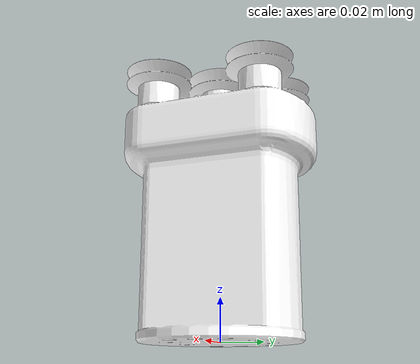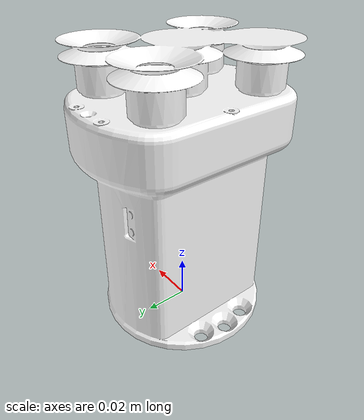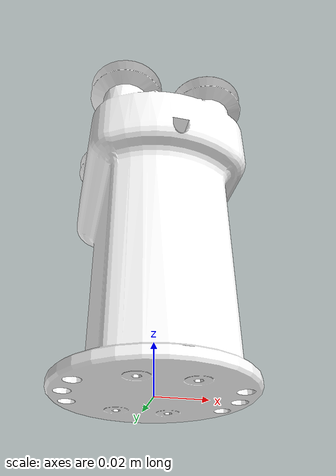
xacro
<?xml version='1.0' encoding='utf-8'?>
<robot xmlns:xacro="http://ros.org/wiki/xacro" name="UF_VACUUM_GRIPPER">
  <xacro:arg name="robot_type" default="xarm"/>
  <xacro:arg name="prefix" default=""/>
  <xacro:arg name="mesh_suffix" default="stl"/>

  <xacro:include filename="$(find xarm_description)/urdf/vacuum_gripper/vacuum_gripper_macro.xacro" />

  <xacro:vacuum_gripper_device robot_type="$(arg robot_type)" prefix="$(arg prefix)" mesh_suffix="$(arg mesh_suffix)" />

</robot>

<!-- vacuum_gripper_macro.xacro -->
<robot xmlns:xacro="http://ros.org/wiki/xacro" name="UF_VACUUM_GRIPPER">
  <xacro:macro name="vacuum_gripper_device" params="prefix:='' robot_type:='xarm' mesh_suffix:='stl' ">

    <!-- Load Common Material -->
    <xacro:include filename="$(find xarm_description)/urdf/_private_macro.xacro" />
    <xacro:device_macro_begin />

    <!-- Load Common Material -->
    <xacro:include filename="$(find xarm_description)/urdf/common/common.material.xacro" />
    <xacro:common_material prefix="${prefix}"/>

    <xacro:property name="mesh_path" value="package://xarm_description/meshes" scope="parent"/>

    <!-- include common.link.xacro -->
    <xacro:include filename="$(find xarm_description)/urdf/common/common.link.xacro" />

    <xacro:if value="${robot_type == 'lite'}">
      <!-- Load Lite Gripper Model URDF -->
      <xacro:include filename="$(find xarm_description)/urdf/vacuum_gripper/lite_vacuum_gripper.urdf.xacro" />
      <xacro:uflite_vacuum_gripper_urdf prefix="${prefix}" />
    </xacro:if>
    <xacro:unless value="${robot_type == 'lite'}">
      <!-- Load XArm Gripper Model URDF -->
      <xacro:include filename="$(find xarm_description)/urdf/vacuum_gripper/xarm_vacuum_gripper.urdf.xacro" />
      <xacro:xarm_vacuum_gripper_urdf prefix="${prefix}" />
    </xacro:unless>
  </xacro:macro>
</robot>

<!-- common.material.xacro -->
<robot xmlns:xacro="http://ros.org/wiki/xacro">
  <xacro:macro name="common_material" params="prefix">
    <material name="${prefix}Black">
      <color rgba="0.0 0.0 0.0 1.0"/>
    </material>

    <material name="${prefix}Red">
      <color rgba="0.8 0.0 0.0 1.0"/>
    </material>

    <material name="${prefix}White">
      <color rgba="1.0 1.0 1.0 1.0"/>
    </material>

    <material name="${prefix}Silver">
      <color rgba="0.753 0.753 0.753 1.0"/>
    </material>
  </xacro:macro>
</robot>

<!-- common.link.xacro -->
<robot xmlns:xacro="http://ros.org/wiki/xacro">

  <xacro:macro name="common_link_inertial" params="link_inertial_params origin_rpy:='0 0 0'">
    <inertial>
      <origin
        xyz="${link_inertial_params['origin']['x']} ${link_inertial_params['origin']['y']} ${link_inertial_params['origin']['z']}"
        rpy="${origin_rpy}" />
      <mass value="${link_inertial_params['mass']}" />
      <inertia
        ixx="${link_inertial_params['inertia']['ixx']}"
        ixy="${link_inertial_params['inertia']['ixy']}"
        ixz="${link_inertial_params['inertia']['ixz']}"
        iyy="${link_inertial_params['inertia']['iyy']}"
        iyz="${link_inertial_params['inertia']['iyz']}"
        izz="${link_inertial_params['inertia']['izz']}" />
    </inertial>
  </xacro:macro>

  <xacro:macro name="common_link_mesh" params="mesh_filename use_mesh_path:=true">
    <xacro:if value="${use_mesh_path}">
      <mesh filename="${mesh_path}/${mesh_filename}"/>
    </xacro:if>
    <xacro:unless value="${use_mesh_path}">
      <mesh filename="${mesh_filename}"/>
    </xacro:unless>
  </xacro:macro>

  <xacro:macro name="common_link_visual" params="mesh_filename add_mesh_suffix:=true material_name:='White' origin_xyz:='0 0 0' origin_rpy:='0 0 0'">
    <visual>
      <geometry>
        <xacro:if value="${add_mesh_suffix}">
          <mesh filename="${mesh_path}/${mesh_filename}.${mesh_suffix}"/>
        </xacro:if>
        <xacro:unless value="${add_mesh_suffix}">
          <mesh filename="${mesh_path}/${mesh_filename}"/>
        </xacro:unless>
      </geometry>
      <origin xyz="${origin_xyz}" rpy="${origin_rpy}"/>
      <material name="${material_name}" />
    </visual>
  </xacro:macro>

  <xacro:macro name="common_link_collision" params="mesh_filename add_mesh_suffix:=true origin_xyz:='0 0 0' origin_rpy:='0 0 0'">
    <collision>
      <geometry>
        <xacro:if value="${add_mesh_suffix}">
          <mesh filename="${mesh_path}/${mesh_filename}.${mesh_suffix}"/>
        </xacro:if>
        <xacro:unless value="${add_mesh_suffix}">
          <mesh filename="${mesh_path}/${mesh_filename}"/>
        </xacro:unless>
      </geometry>
      <origin xyz="${origin_xyz}" rpy="${origin_rpy}"/>
    </collision>
  </xacro:macro>

  <xacro:macro name="parse_link_inertial_filename" params="dof robot_type robot_sn model1300">
    <!-- default inertial params filename -->
    <xacro:property name="inertial_params_filename" value="xarm${dof}_type${dof}_HT_BR2"/>
    <xacro:if value="${dof == 6 and robot_type == 'lite'}">
      <xacro:property name="inertial_params_filename" value="xarm6_type9_HT_BR2"/>
    </xacro:if>
    <xacro:if value="${dof == 6 and robot_type == 'uf850'}">
      <xacro:property name="inertial_params_filename" value="xarm6_type12_HT_LDBR2"/>
    </xacro:if>

    <xacro:if value="${use_len}">
      <xacro:property name="robot_sn_len" value="${len(robot_sn)}" />
    </xacro:if>
    <xacro:unless value="${use_len}">
      <xacro:property name="robot_sn_len" value="${robot_sn.__len__()}" />
    </xacro:unless>

    <!-- default model_type and mass_type -->
    <xacro:property name="mass_type" value="-1" />
    <xacro:property name="model_type" value="-1" />
    <xacro:property name="_model1300" value="${model1300}" />

    <!-- parse model_type and mass_type from robot_sn -->
    <xacro:if value="${robot_sn_len >= 14 and (robot_sn[0] == 'X' or robot_sn[0] == 'L' or robot_sn[0] == 'F')}">
      <xacro:if value="${robot_sn[0] == 'F' and robot_sn[1] == 'X'}">
        <!-- UF850 -->
        <xacro:property name="model_type" value="12" />
      </xacro:if>
      <xacro:if value="${robot_sn[0] == 'L'}">
        <!-- Lite6 -->
        <xacro:property name="model_type" value="9" />
      </xacro:if>
      <xacro:if value="${robot_sn[0] == 'X'}">
        <xacro:property name="model_type" value="-1" />
        <!-- XARM -->
        <xacro:if value="${robot_sn[1] == 'F'}">
          <!-- XARM5 -->
          <xacro:property name="model_type" value="5" />
        </xacro:if>
        <xacro:if value="${robot_sn[1] == 'I'}">
          <!-- XARM6 -->
          <xacro:property name="model_type" value="6" />
        </xacro:if>
        <xacro:if value="${robot_sn[1] == 'S'}">
          <!-- XARM7 -->
          <xacro:property name="model_type" value="7" />
        </xacro:if>
      </xacro:if>

      <xacro:property name="model_num" value="${int(robot_sn[2:6])}" />
      <xacro:if value="${model_num == 1250}">
        <xacro:property name="model_type" value="8" />
        <xacro:property name="mass_type" value="1" />
      </xacro:if>
      <xacro:if value="${model_num == 1380}">
        <xacro:property name="model_type" value="11" />
        <xacro:property name="mass_type" value="1" />
      </xacro:if>
      <xacro:if value="${model_num >= 1300}">
        <xacro:property name="_model1300" value="true" />
      </xacro:if>

      <xacro:property name="is_num" value="${robot_sn[8] == '0' or robot_sn[8] == '1' or robot_sn[8] == '2' or robot_sn[8] == '3' or robot_sn[8] == '4' or robot_sn[8] == '5' or robot_sn[8] == '6' or robot_sn[8] == '7' or robot_sn[8] == '8' or robot_sn[8] == '9'}" />
      <xacro:if value="${is_num}">
        <xacro:property name="date_str" value="${robot_sn[8:10]}${robot_sn[6:8]}" />
      </xacro:if>
      <xacro:unless value="${is_num}">
        <xacro:property name="date_str" value="2${robot_sn[9]}${robot_sn[6:8]}" />
      </xacro:unless>
      <xacro:property name="date_int" value="${int(date_str)}" />

      <xacro:if value="${robot_sn[11] == 'B' or robot_sn[11] == 'L' or robot_sn[11] == 'X' or robot_sn[11] == 'D'}">
        <xacro:property name="hd_type" value="${robot_sn[11]}" />
      </xacro:if>
      <xacro:unless value="${robot_sn[11] == 'B' or robot_sn[11] == 'L' or robot_sn[11] == 'X' or robot_sn[11] == 'D'}">
        <xacro:if value="${robot_sn_len >= 16 and robot_sn[14] == '_'}">
          <xacro:property name="hd_type" value="${robot_sn[15]}" />
        </xacro:if>
        <xacro:unless value="${robot_sn_len >= 16 and robot_sn[14] == '_'}">
          <xacro:property name="hd_type" value="" />
        </xacro:unless>
      </xacro:unless>

      <xacro:if value="${hd_type == 'B'}">
        <xacro:if value="${date_int >= 2004}">
          <xacro:property name="mass_type" value="11" />
        </xacro:if>
        <xacro:unless value="${date_int >= 2004}">
          <xacro:property name="mass_type" value="1" />
        </xacro:unless>
      </xacro:if>
      <xacro:unless value="${hd_type == 'B'}">
        <xacro:property name="mass_type" value="1" />
        <xacro:if value="${hd_type == 'L'}">
          <xacro:property name="mass_type" value="2" />
        </xacro:if>
        <xacro:if value="${hd_type == 'X'}">
          <xacro:property name="mass_type" value="3" />
        </xacro:if>
        <xacro:if value="${hd_type == 'D'}">
          <xacro:property name="mass_type" value="4" />
        </xacro:if>
      </xacro:unless>
    </xacro:if>

    <!-- update xarm5 inertia params filename -->
    <xacro:if value="${dof == 5}">
      <xacro:if value="${model_type == 5}">
        <xacro:if value="${mass_type == 1}">
          <xacro:property name="inertial_params_filename" value="xarm5_type5_HT_BR"/>
        </xacro:if>
        <xacro:if value="${mass_type == 2}">
          <xacro:property name="inertial_params_filename" value="xarm5_type5_HT_LD"/>
        </xacro:if>
        <xacro:if value="${mass_type == 11}">
          <xacro:property name="inertial_params_filename" value="xarm5_type5_HT_BR2"/>
        </xacro:if>
      </xacro:if>
    </xacro:if>

    <xacro:if value="${dof == 6}">
      <!-- update uf850 inertia params filename -->
      <xacro:if value="${robot_type == 'uf850'}">
        <xacro:if value="${model_type == 12}">
          <xacro:property name="inertial_params_filename" value="xarm6_type12_HT_LDBR2"/>
        </xacro:if>
      </xacro:if>
      <!-- update lite6 inertia params filename -->
      <xacro:if value="${robot_type == 'lite'}">
        <xacro:if value="${model_type == 9}">
          <xacro:property name="inertial_params_filename" value="xarm6_type9_HT_BR2"/>
        </xacro:if>
      </xacro:if>
      <!-- update xarm6 inertia params filename -->
      <xacro:unless value="${robot_type == 'lite' or robot_type == 'uf850'}">
        <xacro:if value="${model_type == 6}">
          <xacro:if value="${mass_type == 1}">
            <xacro:property name="inertial_params_filename" value="xarm6_type6_HT_BR"/>
          </xacro:if>
          <xacro:if value="${mass_type == 2}">
            <xacro:property name="inertial_params_filename" value="xarm6_type6_HT_LD"/>
          </xacro:if>
          <xacro:if value="${mass_type == 11}">
            <xacro:property name="inertial_params_filename" value="xarm6_type6_HT_BR2"/>
          </xacro:if>
        </xacro:if>
        <xacro:if value="${model_type == 8}">
          <xacro:property name="inertial_params_filename" value="xarm6_type8_HT2_BR2"/>
        </xacro:if>
        <xacro:if value="${model_type == 11}">
          <xacro:property name="inertial_params_filename" value="xarm6_type11_HT_LD"/>
        </xacro:if>
      </xacro:unless>
    </xacro:if>

    <!-- update xarm7 inertia params filename -->
    <xacro:unless value="${dof == 5 or dof == 6}">
      <xacro:if value="${model_type == 3}">
        <xacro:property name="inertial_params_filename" value="xarm7_type3_YT_SP"/>
      </xacro:if>
      <xacro:if value="${model_type == 7}">
        <xacro:if value="${mass_type == 1}">
          <xacro:property name="inertial_params_filename" value="xarm7_type7_HT_BR"/>
        </xacro:if>
        <xacro:if value="${mass_type == 2}">
          <xacro:property name="inertial_params_filename" value="xarm7_type7_HT_LD"/>
        </xacro:if>
        <xacro:if value="${mass_type == 11}">
          <xacro:property name="inertial_params_filename" value="xarm7_type7_HT_BR2"/>
        </xacro:if>
      </xacro:if>
    </xacro:unless>
    <xacro:property name="scope_parent_inertial_params_filename" value="${inertial_params_filename}" scope="parent"/>
    <xacro:property name="scope_parent_model1300" value="${_model1300}" scope="parent"/>
  </xacro:macro>

</robot>

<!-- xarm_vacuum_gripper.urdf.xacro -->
<robot xmlns:xacro="http://ros.org/wiki/xacro" name="xarm_vacuum_gripper">

  <xacro:macro name="xarm_vacuum_gripper_urdf" params="prefix:='' attach_to:='' attach_xyz:='0 0 0' attach_rpy:='0 0 0' ">

    <xacro:unless value="${attach_to == ''}">
      <joint name="${prefix}vacuum_gripper_fix" type="fixed">
        <parent link="${attach_to}"/>
        <child link="${prefix}xarm_vacuum_gripper_link"/>
        <origin xyz="${attach_xyz}" rpy="${attach_rpy}"/>
      </joint>
    </xacro:unless>

    <link name="${prefix}xarm_vacuum_gripper_link">
      <inertial>
        <origin xyz="0.0 0.0 0.055" rpy="0 0 0" />
        <mass value="0.656" />
        <inertia
          ixx="0.00047106" ixy="3.9292E-07" ixz="2.6537E-06"
          iyy="0.00033072" iyz="-1.0975E-05" izz="0.00025642" />
      </inertial>
      <xacro:common_link_visual
        mesh_filename="vacuum_gripper/xarm/visual/vacuum_gripper"
        origin_xyz="0 0 0"
        origin_rpy="0 0 0"
        material_name="${prefix}White" />
      <xacro:common_link_collision
        mesh_filename="vacuum_gripper/xarm/collision/vacuum_gripper"
        origin_xyz="0 0 0"
        origin_rpy="0 0 0" />
    </link>

    <link name="${prefix}link_tcp" />

    <joint name="${prefix}joint_tcp" type="fixed">
      <origin xyz="0 0 0.126" rpy="0 0 0" />
      <parent link="${prefix}xarm_vacuum_gripper_link" />
      <child link="${prefix}link_tcp" />
    </joint>

  </xacro:macro>

</robot>
